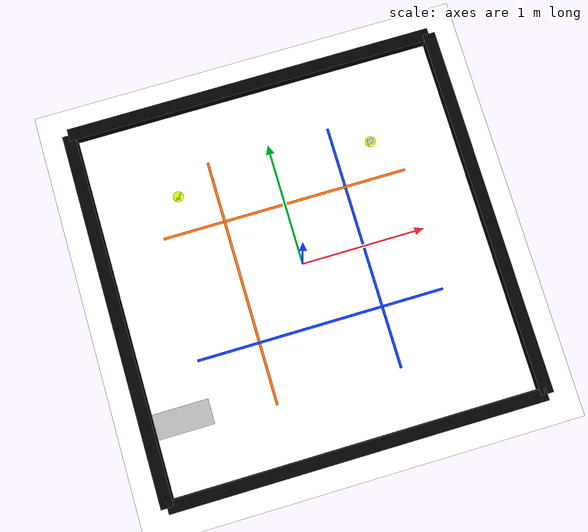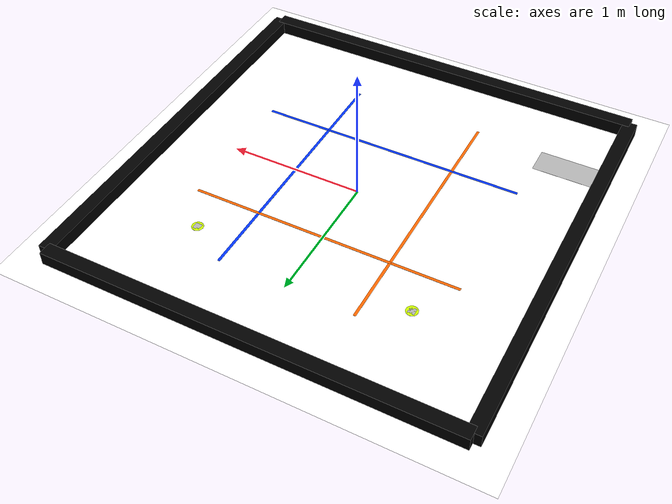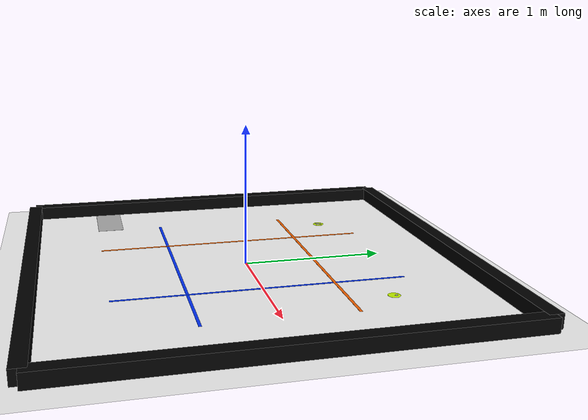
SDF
<?xml version="1.0" ?>
<sdf version="1.7">
  <world name="wro_track">

    <!-- Physics settings -->
    <physics name="default_physics" default="true" type="ode">
      <max_step_size>0.001</max_step_size>
      <real_time_factor>1.0</real_time_factor>
      <real_time_update_rate>1000</real_time_update_rate>
    </physics>

    <!-- Lighting (can be randomized) -->
    <light name="sun" type="directional">
      <pose>0 0 10 0 0 0</pose>
      <diffuse>0.8 0.8 0.8 1</diffuse>
      <specular>0.2 0.2 0.2 1</specular>
      <direction>-0.5 -0.5 -1.0</direction>
      <cast_shadows>true</cast_shadows>
    </light>

    <!-- Additional ambient light -->
    <light name="ambient_light" type="point">
      <pose>0 0 3 0 0 0</pose>
      <diffuse>0.4 0.4 0.4 1</diffuse>
      <specular>0.1 0.1 0.1 1</specular>
      <attenuation>
        <range>20</range>
        <constant>0.5</constant>
        <linear>0.01</linear>
        <quadratic>0.001</quadratic>
      </attenuation>
    </light>

    <!-- Ground plane (3200mm x 3200mm mat, WRO Official Spec 13.1-13.2) -->
    <!-- Main colour is WHITE (Spec 13.2) -->
    <model name="ground">
      <static>true</static>
      <link name="link">
        <visual name="visual">
          <geometry>
            <plane>
              <normal>0 0 1</normal>
              <size>3.2 3.2</size>  <!-- 3200mm x 3200mm -->
            </plane>
          </geometry>
          <material>
            <ambient>1.0 1.0 1.0 1</ambient>  <!-- WHITE - WRO Official Spec 13.2 -->
            <diffuse>1.0 1.0 1.0 1</diffuse>
            <specular>0.1 0.1 0.1 1</specular>  <!-- Slight specular for realism -->
          </material>
        </visual>
        <collision name="collision">
          <geometry>
            <plane>
              <normal>0 0 1</normal>
              <size>3.2 3.2</size>
            </plane>
          </geometry>
          <surface>
            <friction>
              <ode>
                <mu>0.8</mu>
                <mu2>0.8</mu2>
              </ode>
            </friction>
          </surface>
        </collision>
      </link>
    </model>

    <!-- EXTERIOR WALLS (WRO Official Spec 13.3-13.4) -->
    <!-- Inner height: 100mm, Inner colour: BLACK -->

    <!-- North exterior wall -->
    <model name="exterior_wall_north">
      <static>true</static>
      <pose>0 1.5 0.05 0 0 0</pose>  <!-- Height at 50mm (half of 100mm) -->
      <link name="link">
        <visual name="visual">
          <geometry>
            <box><size>3.0 0.1 0.1</size></box>  <!-- 100mm height -->
          </geometry>
          <material>
            <ambient>0.0 0.0 0.0 1</ambient>  <!-- BLACK - WRO Spec 13.4 -->
            <diffuse>0.0 0.0 0.0 1</diffuse>
            <specular>0.0 0.0 0.0 1</specular>
          </material>
        </visual>
        <collision name="collision">
          <geometry>
            <box><size>3.0 0.1 0.1</size></box>
          </geometry>
        </collision>
      </link>
    </model>

    <!-- South exterior wall -->
    <model name="exterior_wall_south">
      <static>true</static>
      <pose>0 -1.5 0.05 0 0 0</pose>
      <link name="link">
        <visual name="visual">
          <geometry>
            <box><size>3.0 0.1 0.1</size></box>
          </geometry>
          <material>
            <ambient>0.0 0.0 0.0 1</ambient>
            <diffuse>0.0 0.0 0.0 1</diffuse>
            <specular>0.0 0.0 0.0 1</specular>
          </material>
        </visual>
        <collision name="collision">
          <geometry>
            <box><size>3.0 0.1 0.1</size></box>
          </geometry>
        </collision>
      </link>
    </model>

    <!-- East exterior wall -->
    <model name="exterior_wall_east">
      <static>true</static>
      <pose>1.5 0 0.05 0 0 0</pose>
      <link name="link">
        <visual name="visual">
          <geometry>
            <box><size>0.1 3.0 0.1</size></box>
          </geometry>
          <material>
            <ambient>0.0 0.0 0.0 1</ambient>
            <diffuse>0.0 0.0 0.0 1</diffuse>
            <specular>0.0 0.0 0.0 1</specular>
          </material>
        </visual>
        <collision name="collision">
          <geometry>
            <box><size>0.1 3.0 0.1</size></box>
          </geometry>
        </collision>
      </link>
    </model>

    <!-- West exterior wall -->
    <model name="exterior_wall_west">
      <static>true</static>
      <pose>-1.5 0 0.05 0 0 0</pose>
      <link name="link">
        <visual name="visual">
          <geometry>
            <box><size>0.1 3.0 0.1</size></box>
          </geometry>
          <material>
            <ambient>0.0 0.0 0.0 1</ambient>
            <diffuse>0.0 0.0 0.0 1</diffuse>
            <specular>0.0 0.0 0.0 1</specular>
          </material>
        </visual>
        <collision name="collision">
          <geometry>
            <box><size>0.1 3.0 0.1</size></box>
          </geometry>
        </collision>
      </link>
    </model>

    <!-- INTERIOR WALLS (WRO Official Spec 13.5-13.6) -->
    <!-- Height: 100mm, Colour: BLACK on all sides -->
    <!-- Distance from exterior walls varies by round type -->
    <!-- NOTE: Interior wall configuration depends on specific challenge round -->
    <!-- Add interior walls here based on challenge configuration -->

    <!-- STARTING ZONE (WRO Official Spec 13.10-13.11) -->
    <!-- Size: 200mm x 500mm, Dashed lines CMYK(0,0,0,30) = RGB(179,179,179) -->
    <!-- Located in one corner -->
    <model name="starting_zone">
      <static>true</static>
      <pose>-1.25 -0.9 0.0001 0 0 0</pose>  <!-- Southwest corner -->
      <link name="link">
        <!-- Dashed boundary rectangle (simplified as solid for visibility) -->
        <visual name="visual">
          <geometry>
            <box><size>0.5 0.2 0.001</size></box>  <!-- 500mm x 200mm -->
          </geometry>
          <material>
            <ambient>0.7 0.7 0.7 1</ambient>  <!-- CMYK(0,0,0,30) ≈ RGB(179,179,179) -->
            <diffuse>0.7 0.7 0.7 1</diffuse>
          </material>
        </visual>
      </link>
    </model>

    <!-- ORANGE LINES (WRO Official Spec 13.9) -->
    <!-- CMYK(0, 60, 100, 0) = RGB(255, 102, 0), Thickness: 20mm -->

    <!-- Example orange line 1 (horizontal) -->
    <model name="orange_line_1">
      <static>true</static>
      <pose>0 0.5 0.0002 0 0 0</pose>
      <link name="link">
        <visual name="visual">
          <geometry>
            <box><size>2.0 0.02 0.001</size></box>  <!-- 20mm thick -->
          </geometry>
          <material>
            <ambient>1.0 0.4 0.0 1</ambient>  <!-- CMYK(0,60,100,0) ≈ RGB(255,102,0) -->
            <diffuse>1.0 0.4 0.0 1</diffuse>
            <specular>0.1 0.1 0.1 1</specular>
          </material>
        </visual>
      </link>
    </model>

    <!-- Example orange line 2 (vertical) -->
    <model name="orange_line_2">
      <static>true</static>
      <pose>-0.5 0 0.0002 0 0 0</pose>
      <link name="link">
        <visual name="visual">
          <geometry>
            <box><size>0.02 2.0 0.001</size></box>
          </geometry>
          <material>
            <ambient>1.0 0.4 0.0 1</ambient>
            <diffuse>1.0 0.4 0.0 1</diffuse>
            <specular>0.1 0.1 0.1 1</specular>
          </material>
        </visual>
      </link>
    </model>

    <!-- BLUE LINES (WRO Official Spec 13.9) -->
    <!-- CMYK(100, 80, 0, 0) = RGB(0, 51, 255), Thickness: 20mm -->

    <!-- Example blue line 1 (horizontal) -->
    <model name="blue_line_1">
      <static>true</static>
      <pose>0 -0.5 0.0002 0 0 0</pose>
      <link name="link">
        <visual name="visual">
          <geometry>
            <box><size>2.0 0.02 0.001</size></box>
          </geometry>
          <material>
            <ambient>0.0 0.2 1.0 1</ambient>  <!-- CMYK(100,80,0,0) ≈ RGB(0,51,255) -->
            <diffuse>0.0 0.2 1.0 1</diffuse>
            <specular>0.1 0.1 0.1 1</specular>
          </material>
        </visual>
      </link>
    </model>

    <!-- Example blue line 2 (vertical) -->
    <model name="blue_line_2">
      <static>true</static>
      <pose>0.5 0 0.0002 0 0 0</pose>
      <link name="link">
        <visual name="visual">
          <geometry>
            <box><size>0.02 2.0 0.001</size></box>
          </geometry>
          <material>
            <ambient>0.0 0.2 1.0 1</ambient>
            <diffuse>0.0 0.2 1.0 1</diffuse>
            <specular>0.1 0.1 0.1 1</specular>
          </material>
        </visual>
      </link>
    </model>

    <!-- TRAFFIC SIGN SEATS (WRO Official Spec 13.12-13.15) -->
    <!-- 50mm x 50mm squares with 1mm line, CMYK(0,0,0,30) -->
    <!-- 85mm diameter circle around each seat, CMYK(20,0,100,0) = RGB(204,255,0) -->

    <!-- Example traffic sign seat 1 -->
    <model name="sign_seat_1">
      <static>true</static>
      <pose>0.8 0.8 0.0003 0 0 0</pose>
      <link name="link">
        <!-- Square seat marker -->
        <visual name="square">
          <geometry>
            <box><size>0.05 0.05 0.001</size></box>  <!-- 50mm x 50mm -->
          </geometry>
          <material>
            <ambient>0.7 0.7 0.7 1</ambient>  <!-- Grey line color -->
            <diffuse>0.7 0.7 0.7 1</diffuse>
          </material>
        </visual>
        <!-- Circle around seat (simplified as disk) -->
        <visual name="circle">
          <geometry>
            <cylinder>
              <radius>0.0425</radius>  <!-- 85mm diameter = 42.5mm radius -->
              <length>0.001</length>
            </cylinder>
          </geometry>
          <material>
            <ambient>0.8 1.0 0.0 1</ambient>  <!-- CMYK(20,0,100,0) lime green -->
            <diffuse>0.8 1.0 0.0 1</diffuse>
          </material>
        </visual>
      </link>
    </model>

    <!-- Example traffic sign seat 2 -->
    <model name="sign_seat_2">
      <static>true</static>
      <pose>-0.8 0.8 0.0003 0 0 0</pose>
      <link name="link">
        <visual name="square">
          <geometry>
            <box><size>0.05 0.05 0.001</size></box>
          </geometry>
          <material>
            <ambient>0.7 0.7 0.7 1</ambient>
            <diffuse>0.7 0.7 0.7 1</diffuse>
          </material>
        </visual>
        <visual name="circle">
          <geometry>
            <cylinder>
              <radius>0.0425</radius>
              <length>0.001</length>
            </cylinder>
          </geometry>
          <material>
            <ambient>0.8 1.0 0.0 1</ambient>
            <diffuse>0.8 1.0 0.0 1</diffuse>
          </material>
        </visual>
      </link>
    </model>

  </world>
</sdf>
